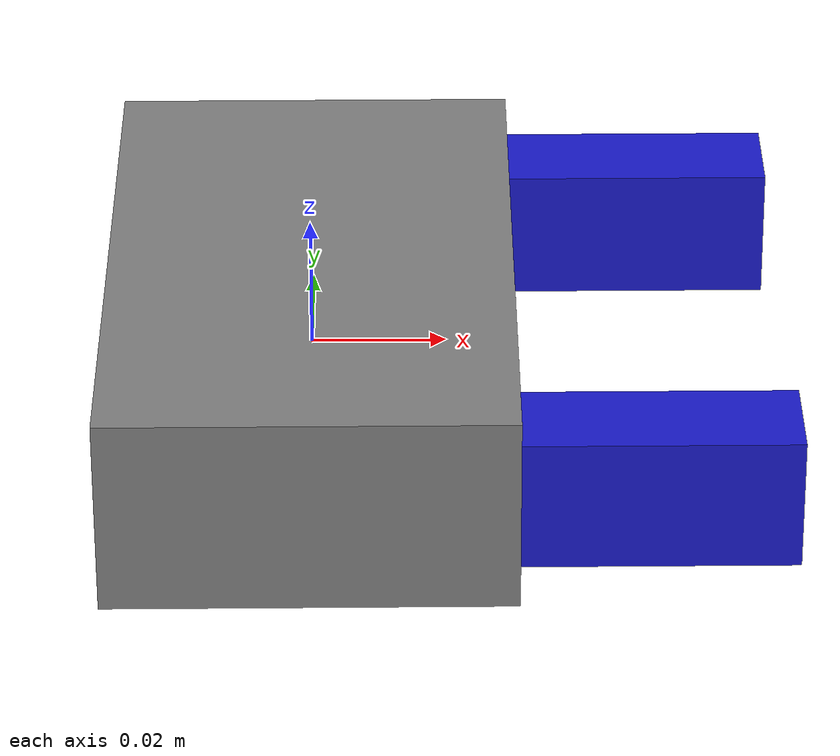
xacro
<?xml version="1.0"?>
<robot xmlns:xacro="http://www.ros.org/wiki/xacro" name="my_gripper">

  <link name="gripper_base_link">
    <visual>
      <geometry>

        <box size="0.06 0.1 0.03" />
      </geometry>
      <material name="grey">
        <color rgba="0.5 0.5 0.5 1"/>
      </material>
    </visual>

    <collision>
      <geometry>
        <box size="0.06 0.1 0.03" />
      </geometry>
    </collision>
    <inertial>
      <mass value="0.1" />
      <inertia ixx="0.001" ixy="0" ixz="0" iyy="0.001" iyz="0" izz="0.001" />
    </inertial>
  </link>

  <link name="left_claw_link">
    <visual>

      <origin xyz="0.035 0 0" rpy="0 0 0"/>
      <geometry>
        <box size="0.07 0.015 0.02" />
      </geometry>
      <material name="blue">
        <color rgba="0.1 0.1 0.8 1"/>
      </material>
    </visual>
    <collision>
      <origin xyz="0.035 0 0" rpy="0 0 0"/>
      <geometry>
        <box size="0.07 0.015 0.02" />
      </geometry>
    </collision>
    <inertial>
      <mass value="0.01" />
      <inertia ixx="0.001" ixy="0" ixz="0" iyy="0.001" iyz="0" izz="0.001" />
    </inertial>
  </link>

  <link name="right_claw_link">
    <visual>
      <origin xyz="0.035 0 0" rpy="0 0 0"/>
      <geometry>
        <box size="0.07 0.015 0.02" />
      </geometry>
      <material name="blue"/>
    </visual>
    <collision>
      <origin xyz="0.035 0 0" rpy="0 0 0"/>
      <geometry>
        <box size="0.07 0.015 0.02" />
      </geometry>
    </collision>
    <inertial>
      <mass value="0.01" />
      <inertia ixx="0.001" ixy="0" ixz="0" iyy="0.001" iyz="0" izz="0.001" />
    </inertial>
  </link>

  <joint name="left_claw_joint" type="revolute">
    <parent link="gripper_base_link"/>
    <child link="left_claw_link"/>

    <origin xyz="0 0.04 0" rpy="0 0 0"/>

    <axis xyz="0 0 1"/>

    <limit lower="-0.4" upper="1.0" effort="100" velocity="0.5"/>
  </joint>

  <joint name="right_claw_joint" type="revolute">
    <parent link="gripper_base_link"/>
    <child link="right_claw_link"/>

    <origin xyz="0 -0.04 0" rpy="0 0 0"/>

    <axis xyz="0 0 -1"/>

    <limit lower="-0.4" upper="1.0" effort="100" velocity="0.5"/>

    <mimic joint="left_claw_joint" multiplier="1.0" offset="0"/>
  </joint>

</robot>
